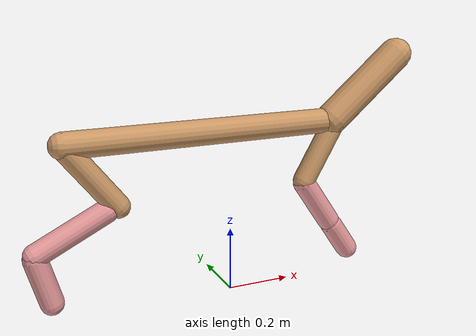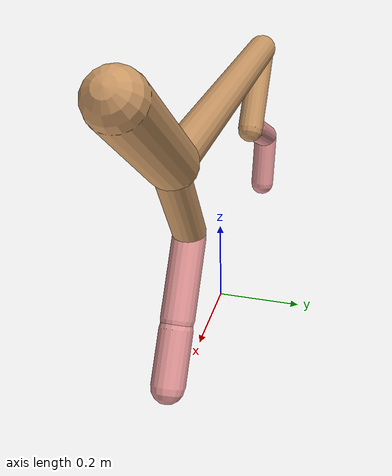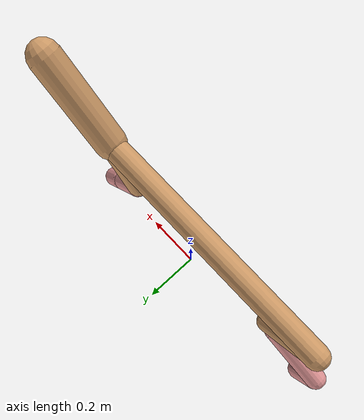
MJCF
<mujoco model="cheetah">
  <compiler angle="radian" coordinate="local" inertiafromgeom="true" settotalmass="14" />
  <default>
    <joint armature=".1" damping=".01" limited="true" solimplimit="0 .8 .03" solreflimit=".02 1" stiffness="8" />
    <geom conaffinity="0" condim="3" contype="1" friction="0.8 .1 .1" rgba="0.8 0.6 .4 1" solimp="0.0 0.8 0.01" solref="0.02 1" />
    <motor ctrllimited="true" ctrlrange="-1 1" />
  </default>
  <size nstack="300000" nuser_geom="1" />
  <option gravity="0 0 -9.81" timestep="0.01" />
  <worldbody>
    <body name="torso" pos="0.0 0.0 0.5164250798274637">
      <joint armature="0" axis="1 0 0" damping="0" limited="false" name="ignorex" pos="0 0 0" stiffness="0" type="slide" />
      <joint armature="0" axis="0 0 1" damping="0" limited="false" name="ignorez" pos="0 0 0" stiffness="0" type="slide" />
      <joint armature="0" axis="0 1 0" damping="0" limited="false" name="ignorey" pos="0 0 0" stiffness="0" type="hinge" />
      <geom fromto="-0.5 0.0 0.0 0.366767012497048 0.0 0.0" name="torso" size="0.039022786868055055" type="capsule" />
      <geom axisangle="0 1 0 .87" name="head" pos="0.466767012497048 0.0 0.1" size="0.051570260973310855 0.15" type="capsule" />

      <body name="bthigh" pos="-.5 0 0">
        <joint axis="0 1 0" damping="6" name="bthigh" pos="0 0 0" range="-.52 1.05" stiffness="240" type="hinge" />
        <geom axisangle="0 1 0 -3.8" name="bthigh" pos="0.08035851413960902 0.0 -0.10446606838149174" size="0.034828908014471124 0.11278556797485642" type="capsule" />
        <body name="bshin" pos="0.12071702827921804 0.0 -0.19893213676298346">
          <joint axis="0 1 0" damping="4.5" name="bshin" pos="0 0 0" range="-.785 .785" stiffness="180" type="hinge" />
          <geom axisangle="0 1 0 -2.03" name="bshin" pos="-0.11019296833182048 0.0 -0.05509648416591024" rgba="0.9 0.6 0.6 1" size="0.034828908014471124 0.11667472549123079" type="capsule" />
          <body name="bfoot" pos="-0.22038593666364095 0.0 -0.11019296833182048">
            <joint axis="0 1 0" damping="3" name="bfoot" pos="0 0 0" range="-.4 .785" stiffness="120" type="hinge" />
            <geom axisangle="0 1 0 -.27" name="bfoot" pos="0.023829457968077727 0.0 -0.07704858076345132" rgba="0.9 0.6 0.6 1" size="0.034828908014471124 0.07311616130783796" type="capsule" />
            <inertial mass="10" />
          </body>
        </body>
      </body>
      <body name="fthigh" pos="0.366767012497048 0.0 0.0">
        <joint axis="0 1 0" damping="4.5" name="fthigh" pos="0 0 0" range="-1.5 0.8" stiffness="180" type="hinge" />
        <geom axisangle="0 1 0 .52" name="fthigh" pos="-0.057131542806189886 0.0 -0.09793978766775407" size="0.03514644565087347 0.10746081131490864" type="capsule" />
        <body name="fshin" pos="-0.11426308561237977 0.0 -0.19587957533550815">
          <joint axis="0 1 0" damping="3" name="fshin" pos="0 0 0" range="-1.2 1.1" stiffness="120" type="hinge" />
          <geom axisangle="0 1 0 -.6" name="fshin" pos="0.05308260830703166 0.0 -0.07349899611742844" rgba="0.9 0.6 0.6 1" size="0.03514644565087347 0.08564545864195726" type="capsule" />
          <body name="ffoot" pos="0.10616521661406332 0.0 -0.14699799223485688">
            <joint axis="0 1 0" damping="1.5" name="ffoot" pos="0 0 0" range="-3.1 -0.3" stiffness="60" type="hinge" />
            <geom axisangle="0 1 0 -.6" name="ffoot" pos="0.03773131044344686 0.0 -0.05869314957869513" rgba="0.9 0.6 0.6 1" size="0.03514644565087347 0.056558321744688764" type="capsule" />
            <inertial mass="10" />
          </body>
        </body>
      </body>
    </body>
  </worldbody>
  <actuator>
    <motor gear="120" joint="bthigh" name="bthigh" />
    <motor gear="90" joint="bshin" name="bshin" />
    <motor gear="60" joint="bfoot" name="bfoot" />
    <motor gear="120" joint="fthigh" name="fthigh" />
    <motor gear="60" joint="fshin" name="fshin" />
    <motor gear="30" joint="ffoot" name="ffoot" />
  </actuator>
</mujoco>
